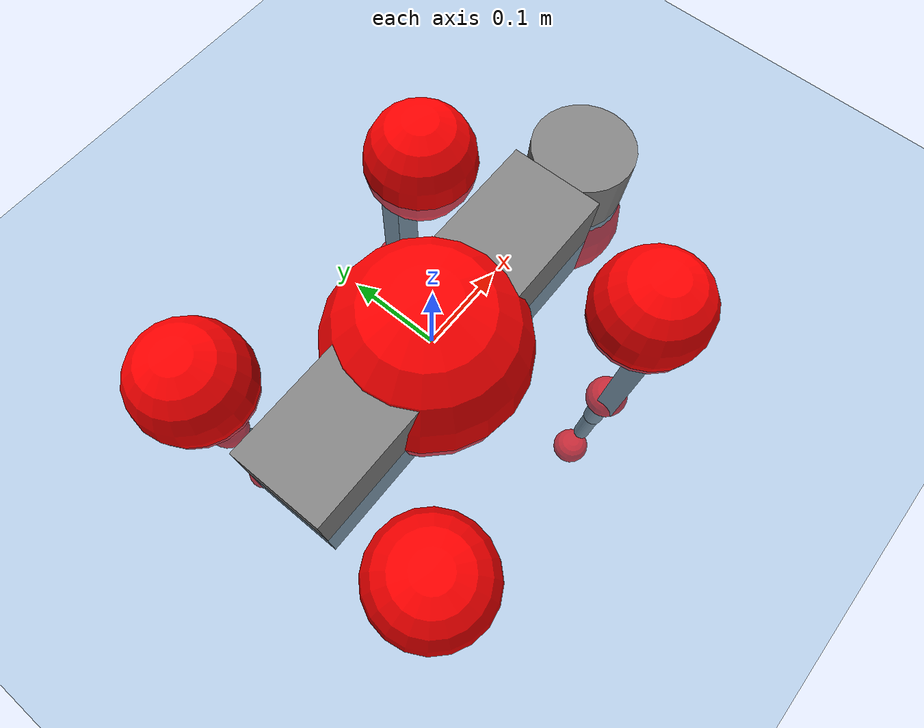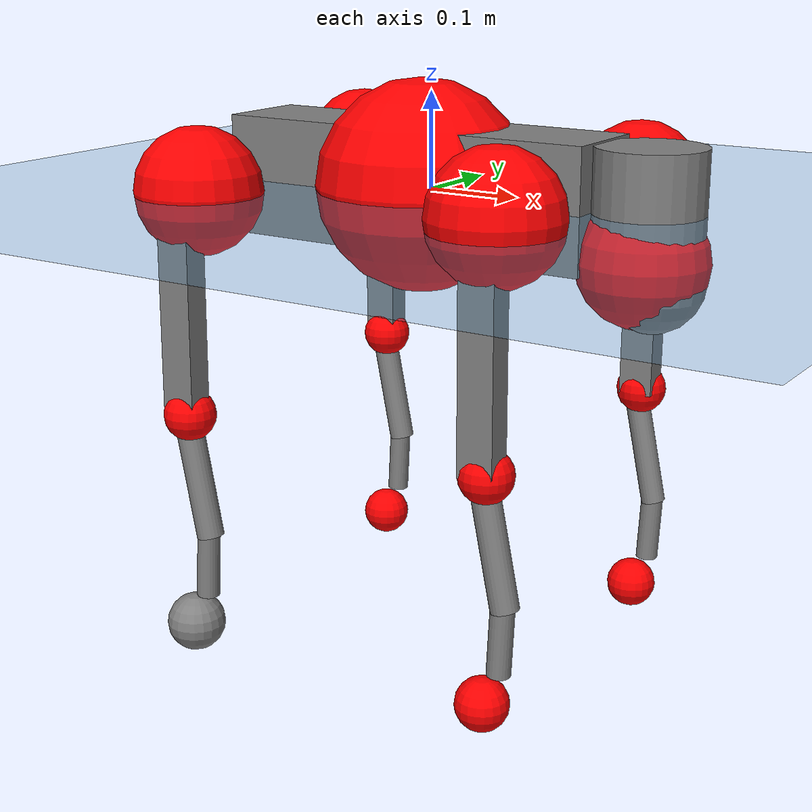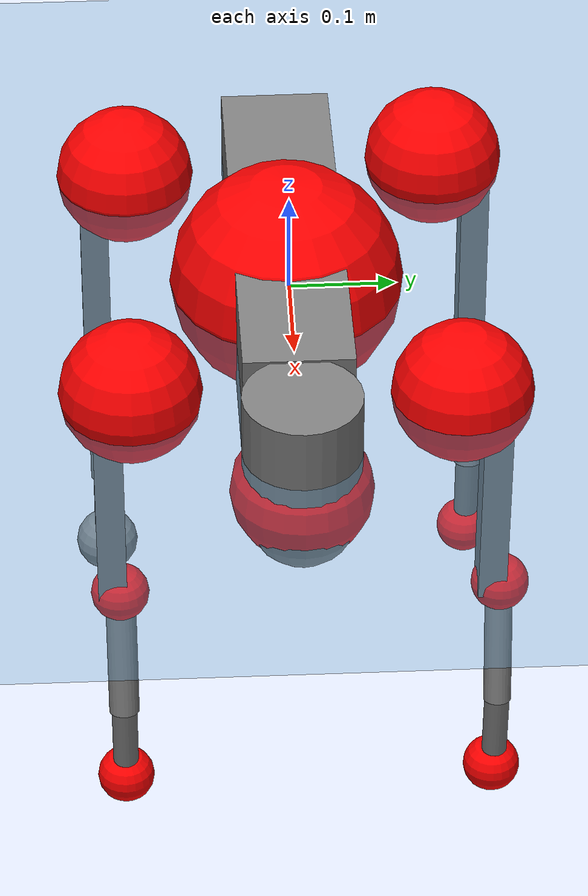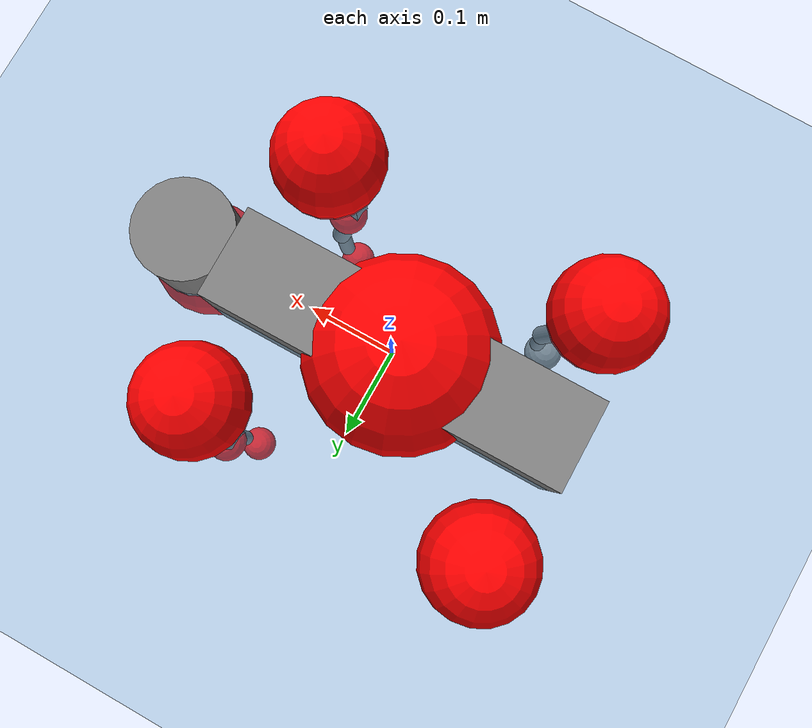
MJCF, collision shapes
<mujoco model="go2">
  <compiler angle="radian" assetdir="assets" balanceinertia="true" inertiafromgeom="false"/>

  <option timestep="0.005" density="1.2" viscosity="2e-05"/>

  <size nkey="1"/>

  <visual>
    <quality shadowsize="8192"/>
    <map shadowclip="0.5"/>
  </visual>

  <default>
    <default class="/">
      <geom contype="0" conaffinity="0" group="1" solref="-1000 -80"/>
      <site size="0.01 0.005 0.005" group="5"/>
      <general forcelimited="true" biastype="affine" gainprm="20" biasprm="0 -20 -0.5"/>
      <default class="go2">
        <joint armature="0.01" damping="0.01" frictionloss="0.2"/>
        <geom condim="1" margin="0.001"/>
        <default class="visual">
          <geom type="mesh" group="2"/>
        </default>
        <default class="collision">
          <geom group="3"/>
          <default class="foot">
            <geom size="0.022 0 0" condim="6" priority="1" friction="0.8 0.02 0.01" solimp="0.015 1 0.022"/>
          </default>
        </default>
        <default class="reward_collision_sphere">
          <geom group="5" rgba="1 0 0 1"/>
        </default>
      </default>
    </default>
  </default>

  <asset>
    <texture type="skybox" colorspace="auto" name="//unnamed_texture_0" builtin="gradient" rgb1="0.95 0.95 0.95" rgb2="0.95 0.95 0.95" width="100" height="600"/>
    <texture type="2d" colorspace="auto" name="texplane" builtin="checker" rgb1="0.345 0.575 0.748" rgb2="0.345 0.575 0.748" markrgb="1 1 1" width="512" height="512"/>
    <material name="MatPlane" class="/" texture="texplane" texuniform="true" texrepeat="2 2" specular="0.9"/>
    <material name="metal" class="/" rgba="0.9 0.95 0.95 1"/>
    <material name="black" class="/" rgba="0 0 0 1"/>
    <material name="white" class="/"/>
    <material name="gray" class="/" rgba="0.671705 0.692426 0.77427 1"/>
    <mesh name="base_0" class="/" file="base_0.obj"/>
    <mesh name="base_1" class="/" file="base_1.obj"/>
    <mesh name="base_2" class="/" file="base_2.obj"/>
    <mesh name="base_3" class="/" file="base_3.obj"/>
    <mesh name="base_4" class="/" file="base_4.obj"/>
    <mesh name="hip_0" class="/" file="hip_0.obj"/>
    <mesh name="hip_1" class="/" file="hip_1.obj"/>
    <mesh name="thigh_0" class="/" file="thigh_0.obj"/>
    <mesh name="thigh_1" class="/" file="thigh_1.obj"/>
    <mesh name="thigh_mirror_0" class="/" file="thigh_mirror_0.obj"/>
    <mesh name="thigh_mirror_1" class="/" file="thigh_mirror_1.obj"/>
    <mesh name="calf_0" class="/" file="calf_0.obj"/>
    <mesh name="calf_1" class="/" file="calf_1.obj"/>
    <mesh name="calf_mirror_0" class="/" file="calf_mirror_0.obj"/>
    <mesh name="calf_mirror_1" class="/" file="calf_mirror_1.obj"/>
    <mesh name="foot" class="/" file="foot.obj"/>
  </asset>

  <worldbody>
    <geom name="floor" class="/" size="100 100 0.125" type="plane" group="0" material="MatPlane"/>
    <light name="toplight_shadow" class="/" pos="0 0 5" dir="0.0990148 0.0990148 -0.990148" type="directional" ambient="0.04 0.04 0.04" diffuse="0.55 0.55 0.55" specular="0.12 0.12 0.12"/>
    <light name="toplight_fill" class="/" pos="0 0 5" dir="0.0990148 0.0990148 -0.990148" type="directional" castshadow="false" ambient="0.04 0.04 0.04" diffuse="0.3 0.3 0.3" specular="0.08 0.08 0.08"/>
    <body name="trunk" childclass="go2" pos="-0.010614 -0.00185233 0.00312616" quat="0.999989 -0.000303558 0.001959 0.00413905">
      <inertial pos="0.0288073 -0.00274294 -0.006733" quat="0.0006777 0.715625 -0.00248729 0.69848" mass="10.2425" diaginertia="0.0596226 0.351403 0.040236"/>
      <joint name="//unnamed_joint_0" type="free" armature="0" damping="0" frictionloss="0"/>
      <geom name="//unnamed_geom_1" class="visual" material="black" mesh="base_0"/>
      <geom name="//unnamed_geom_2" class="visual" material="black" mesh="base_1"/>
      <geom name="//unnamed_geom_3" class="visual" material="black" mesh="base_2"/>
      <geom name="//unnamed_geom_4" class="visual" material="white" mesh="base_3"/>
      <geom name="//unnamed_geom_5" class="visual" material="gray" mesh="base_4"/>
      <geom name="trunk_1" class="collision" size="0.207421 0.0515519 0.0628547" type="box"/>
      <geom name="trunk_2" class="collision" size="0.0551357 0.0496222" pos="0.255137 0 0.0111603" type="cylinder"/>
      <geom name="trunk_3" class="collision" size="0.0518276" pos="0.262299 0 -0.0669615"/>
      <geom name="//unnamed_geom_9" class="reward_collision_sphere" size="0.110271"/>
      <geom name="//unnamed_geom_10" class="reward_collision_sphere" size="0.0661629" pos="0.250661 0 -0.0502211"/>
      <site name="imu" pos="-0.031781 -0.0200059 0.00353062" size="0.0110271"/>
      <camera name="track" pos="0 -2.5938 0" quat="0.707107 0.707107 0 0" mode="trackcom"/>
      <camera name="ego_camera" pos="0.279308 0 0.0502211" quat="-0.5 -0.5 0.5 0.5"/>
      <body name="FL_hip" pos="0.175803 0.0610476 -0.0025835" quat="0.999999 -0.000998036 -0.00102026 0.00031492">
        <inertial pos="-0.00444998 0.00875958 -0.00172978" quat="0.495401 0.499726 0.500401 0.504431" mass="0.946681" diaginertia="0.000441253 0.00209102 0.000828399"/>
        <joint name="FL_hip_joint" pos="0 0 0" axis="0.998639 -0.0423558 -0.030448" stiffness="0.00827456" range="-1.25003 1.01408" armature="0.0115343" damping="0" frictionloss="0.222546"/>
        <geom name="//unnamed_geom_11" class="visual" material="metal" mesh="hip_0"/>
        <geom name="//unnamed_geom_12" class="visual" material="gray" mesh="hip_1"/>
        <geom name="//unnamed_geom_13" class="collision" size="0.0507249 0.0220543" pos="0 0.103752 0" quat="0.707107 0.707107 0 0" type="cylinder"/>
        <geom name="//unnamed_geom_14" class="reward_collision_sphere" size="0.0661629" pos="0 0.0907831 0"/>
        <body name="FL_thigh" pos="-0.00334436 0.124902 -0.00430955" quat="0.999992 -0.00263282 0.000843406 0.00279918">
          <inertial pos="-0.00936939 -0.023823 -0.027488" quat="0.829499 0.0848773 -0.0199652 0.55166" mass="1.62485" diaginertia="0.0035315 0.0236248 0.00141357"/>
          <joint name="FL_thigh_joint" pos="0 0 0" axis="0.00822792 0.999966 -0.000516107" stiffness="0.0547674" range="-1.62731 3.51391" armature="0.0124636" damping="0.00800164" frictionloss="0.237515"/>
          <geom name="//unnamed_geom_15" class="visual" material="metal" mesh="thigh_0"/>
          <geom name="//unnamed_geom_16" class="visual" material="gray" mesh="thigh_1"/>
          <geom name="//unnamed_geom_17" class="collision" size="0.117439 0.0135083 0.0187461" pos="0 0 -0.118857" quat="0.707107 0 0.707107 0" type="box"/>
          <body name="FL_calf" pos="-0.00196223 0.00909738 -0.234672" quat="0.999997 0.000749172 -0.0021803 0.000863459">
            <inertial pos="0.0130409 -0.00170285 -0.163303" quat="0.715407 0.00437075 0.00296322 0.698688" mass="0.316746" diaginertia="0.000781183 0.00433626 7.84837e-05"/>
            <joint name="FL_calf_joint" pos="0 0 0" axis="0.00459251 0.999976 -0.00526359" range="-2.54301 -0.797865" armature="0.00921946" damping="0.0451724" frictionloss="0.179291"/>
            <geom name="//unnamed_geom_18" class="visual" material="gray" mesh="calf_0"/>
            <geom name="//unnamed_geom_19" class="visual" material="black" mesh="calf_1"/>
            <geom name="FL_calf0" class="collision" size="0.0132326 0.0661629" pos="0.00716173 0 -0.0669615" quat="0.994493 0 -0.104807 0" type="cylinder"/>
            <geom name="//unnamed_geom_21" class="collision" size="0.0121299 0.0358382" pos="0.0179043 0 -0.165172" quat="0.999688 0 0.0249974 0" type="cylinder"/>
            <geom name="//unnamed_geom_22" class="visual" pos="0 0 -0.237713" quat="1 0 0 0" material="black" mesh="foot"/>
            <geom name="FL_foot" class="foot" size="0.017231" pos="-0.00179043 0 -0.237713"/>
            <geom name="//unnamed_geom_24" class="reward_collision_sphere" size="0.0275679"/>
            <geom name="//unnamed_geom_25" class="reward_collision_sphere" size="0.0275679" pos="-0.00179043 0 -0.237713"/>
            <site name="FL_foot" class="foot" pos="-0.00179043 0 -0.237713" size="0.0110271"/>
          </body>
        </body>
      </body>
      <body name="FR_hip" pos="0.175009 -0.0614715 0.00937079" quat="0.999994 0.00142651 -0.00305723 -0.000547647">
        <inertial pos="-0.00848895 0.00581966 -0.000917014" quat="0.515132 0.525164 0.484317 0.473581" mass="0.923159" diaginertia="0.000578272 0.00229242 0.000931317"/>
        <joint name="FR_hip_joint" pos="0 0 0" axis="0.999828 7.19937e-05 -0.0185494" stiffness="0.00288705" range="-1.07734 1.04242" armature="0.0106265" damping="0.0211921" frictionloss="0.306665"/>
        <geom name="//unnamed_geom_26" class="visual" pos="0 1.57572e-09 6.75858e-08" quat="4.63268e-05 1 0 0" material="metal" mesh="hip_0"/>
        <geom name="//unnamed_geom_27" class="visual" pos="0 2.55443e-09 -1.67165e-07" quat="4.63268e-05 1 0 0" material="gray" mesh="hip_1"/>
        <geom name="//unnamed_geom_28" class="collision" size="0.0507249 0.0220543" pos="0 -0.103752 0" quat="0.707107 0.707107 0 0" type="cylinder"/>
        <geom name="//unnamed_geom_29" class="reward_collision_sphere" size="0.0661629" pos="0 -0.0907831 0"/>
        <body name="FR_thigh" pos="0.000970726 -0.11351 -0.0033581" quat="0.999999 0.000341223 0.00124215 7.02174e-05">
          <inertial pos="-0.00745951 0.0355392 -0.0381066" quat="0.570519 -0.0223717 0.0960801 0.815338" mass="1.50933" diaginertia="0.00348474 0.0226563 0.00143376"/>
          <joint name="FR_thigh_joint" pos="0 0 0" axis="0.00737853 -0.999963 -0.00444639" stiffness="0.0213858" range="-3.51981 1.4258" armature="0.0114222" damping="0.0128899" frictionloss="0.190372"/>
          <geom name="//unnamed_geom_30" class="visual" material="metal" mesh="thigh_mirror_0"/>
          <geom name="//unnamed_geom_31" class="visual" material="gray" mesh="thigh_mirror_1"/>
          <geom name="//unnamed_geom_32" class="collision" size="0.117439 0.0135083 0.0187461" pos="0 0 -0.118857" quat="0.707107 0 0.707107 0" type="box"/>
          <body name="FR_calf" pos="0.00126703 0.00704065 -0.236372" quat="1 -7.99888e-05 0.000255768 -0.000149229">
            <inertial pos="0.00508488 0.00275011 -0.156091" quat="0.687514 -0.0119813 0.03773 0.725091" mass="0.313555" diaginertia="0.000854922 0.00530707 9.83105e-05"/>
            <joint name="FR_calf_joint" pos="0 0 0" axis="-0.0240101 -0.998852 -0.0414564" stiffness="0.0416136" range="0.877726 2.60419" armature="0.0117556" damping="0" frictionloss="0.245159"/>
            <geom name="//unnamed_geom_33" class="visual" material="gray" mesh="calf_mirror_0"/>
            <geom name="//unnamed_geom_34" class="visual" material="black" mesh="calf_mirror_1"/>
            <geom name="FR_calf0" class="collision" size="0.0143353 0.0661629" pos="0.00895217 0 -0.0669615" quat="0.995004 0 -0.0998334 0" type="cylinder"/>
            <geom name="//unnamed_geom_36" class="collision" size="0.0121299 0.0358382" pos="0.0179043 0 -0.165172" quat="0.999688 0 0.0249974 0" type="cylinder"/>
            <geom name="//unnamed_geom_37" class="visual" pos="0 0 -0.237713" quat="1 0 0 0" material="black" mesh="foot"/>
            <geom name="FR_foot" class="foot" size="0.0255413" pos="-0.00179043 0 -0.237713"/>
            <geom name="//unnamed_geom_39" class="reward_collision_sphere" size="0.0275679"/>
            <geom name="//unnamed_geom_40" class="reward_collision_sphere" size="0.0275679" pos="-0.00179043 0 -0.237713"/>
            <site name="FR_foot" class="foot" pos="-0.00179043 0 -0.237713" size="0.0110271"/>
          </body>
        </body>
      </body>
      <body name="RL_hip" pos="-0.176551 0.0616569 0.00703882" quat="0.999999 0.000836352 -0.000181278 -0.000843131">
        <inertial pos="0.00279074 -0.00715783 0.00634521" quat="0.532846 0.466331 0.472601 0.524651" mass="0.804575" diaginertia="0.000521079 0.00214538 0.000741684"/>
        <joint name="RL_hip_joint" pos="0 0 0" axis="-0.999775 -0.021068 0.0026285" range="-1.07308 1.13741" armature="0.01475" damping="0.00855274" frictionloss="0.126644"/>
        <geom name="//unnamed_geom_41" class="visual" pos="1.92359e-09 0 3.77069e-07" quat="4.63268e-05 0 1 0" material="metal" mesh="hip_0"/>
        <geom name="//unnamed_geom_42" class="visual" pos="3.11838e-09 0 3.34406e-07" quat="4.63268e-05 0 1 0" material="gray" mesh="hip_1"/>
        <geom name="//unnamed_geom_43" class="collision" size="0.0507249 0.0220543" pos="0 0.103752 0" quat="0.707107 0.707107 0 0" type="cylinder"/>
        <geom name="//unnamed_geom_44" class="reward_collision_sphere" size="0.0661629" pos="0 0.0907831 0"/>
        <body name="RL_thigh" pos="0.00107395 0.132041 -0.00837844" quat="1 -0.000542879 0.000139068 0.000370341">
          <inertial pos="-0.00358824 -0.029128 -0.0355529" quat="0.829295 0.0780513 -0.0155688 0.553115" mass="1.34695" diaginertia="0.00347889 0.0215213 0.00141121"/>
          <joint name="RL_thigh_joint" pos="0 0 0" axis="0.0235837 0.999716 0.00351868" range="-0.490081 4.55535" armature="0.00767892" damping="0.0269946" frictionloss="0.215077"/>
          <geom name="//unnamed_geom_45" class="visual" material="metal" mesh="thigh_0"/>
          <geom name="//unnamed_geom_46" class="visual" material="gray" mesh="thigh_1"/>
          <geom name="//unnamed_geom_47" class="collision" size="0.117439 0.0135083 0.0187461" pos="0 0 -0.118857" quat="0.707107 0 0.707107 0" type="box"/>
          <body name="RL_calf" pos="0.000847995 0.000541232 -0.228339" quat="1 -0.000170908 -3.64445e-05 -4.39888e-05">
            <inertial pos="0.00723506 -0.0109834 -0.156051" quat="0.712269 -0.00897642 0.0110748 0.701762" mass="0.317166" diaginertia="0.000884392 0.00540376 0.000102122"/>
            <joint name="RL_calf_joint" pos="0 0 0" axis="-0.0058446 0.999966 0.00584037" stiffness="0.0539497" range="-2.71268 -0.895074" armature="0.00892" damping="0.0340926" frictionloss="0.111465"/>
            <geom name="//unnamed_geom_48" class="visual" material="gray" mesh="calf_0"/>
            <geom name="//unnamed_geom_49" class="visual" material="black" mesh="calf_1"/>
            <geom name="RL_calf0" class="collision" size="0.0143353 0.0661629" pos="0.00895217 0 -0.0669615" quat="0.995004 0 -0.0998334 0" type="cylinder"/>
            <geom name="//unnamed_geom_51" class="collision" size="0.0121299 0.0358382" pos="0.0179043 0 -0.165172" quat="0.999688 0 0.0249974 0" type="cylinder"/>
            <geom name="//unnamed_geom_52" class="visual" pos="0 0 -0.237713" quat="1 0 0 0" material="black" mesh="foot"/>
            <geom name="RL_foot" class="foot" size="0.0275214" pos="-0.00179043 0 -0.237713"/>
            <geom name="//unnamed_geom_54" class="reward_collision_sphere" size="0.0275679"/>
            <geom name="//unnamed_geom_55" class="reward_collision_sphere" size="0.0275679" pos="-0.00179043 0 -0.237713"/>
            <site name="RL_foot" class="foot" pos="-0.00179043 0 -0.237713" size="0.0110271"/>
          </body>
        </body>
      </body>
      <body name="RR_hip" pos="-0.174597 -0.05664 -0.00161351" quat="0.999989 -0.00055578 0.00385432 0.00279285">
        <inertial pos="-0.00514601 -0.00890488 0.00974339" quat="0.506384 0.49056 0.516988 0.485438" mass="0.904976" diaginertia="0.000499417 0.00214194 0.000815265"/>
        <joint name="RR_hip_joint" pos="0 0 0" axis="-0.998657 0.00688063 -0.0513491" range="-1.07878 1.06484" armature="0.0129118" damping="0.00437362" frictionloss="0.227"/>
        <geom name="//unnamed_geom_56" class="visual" pos="-1.90969e-09 1.57572e-09 3.09483e-07" quat="2.14617e-09 4.63268e-05 4.63268e-05 -1" material="metal" mesh="hip_0"/>
        <geom name="//unnamed_geom_57" class="visual" pos="-3.15277e-09 2.55443e-09 5.01572e-07" quat="2.14617e-09 4.63268e-05 4.63268e-05 -1" material="gray" mesh="hip_1"/>
        <geom name="//unnamed_geom_58" class="collision" size="0.0507249 0.0220543" pos="0 -0.103752 0" quat="0.707107 0.707107 0 0" type="cylinder"/>
        <geom name="//unnamed_geom_59" class="reward_collision_sphere" size="0.0661629" pos="0 -0.0907831 0"/>
        <body name="RR_thigh" pos="0.00058952 -0.122354 0.00999002" quat="1 0.000427199 0.000612795 -0.000663613">
          <inertial pos="-0.00480337 0.0300109 -0.0367894" quat="0.556877 -0.0172538 0.0841636 0.82614" mass="1.68795" diaginertia="0.00336362 0.0199059 0.00152182"/>
          <joint name="RR_thigh_joint" pos="0 0 0" axis="0.0046311 -0.999988 0.00181497" range="-4.54764 0.364266" armature="0.0101324" damping="0.0080124" frictionloss="0.226589"/>
          <geom name="//unnamed_geom_60" class="visual" material="metal" mesh="thigh_mirror_0"/>
          <geom name="//unnamed_geom_61" class="visual" material="gray" mesh="thigh_mirror_1"/>
          <geom name="//unnamed_geom_62" class="collision" size="0.117439 0.0135083 0.0187461" pos="0 0 -0.118857" quat="0.707107 0 0.707107 0" type="box"/>
          <body name="RR_calf" pos="0.00168937 0.00326522 -0.24108" quat="1 0.000594394 -0.000535604 0.000445958">
            <inertial pos="0.01181 0.00225079 -0.159071" quat="0.703799 -0.023975 0.0052732 0.709975" mass="0.315578" diaginertia="0.000834688 0.00547849 8.33642e-05"/>
            <joint name="RR_calf_joint" pos="0 0 0" axis="0.0440871 -0.999016 0.00492739" range="0.873966 2.70679" armature="0.0114048" damping="0" frictionloss="0.225535"/>
            <geom name="//unnamed_geom_63" class="visual" material="gray" mesh="calf_mirror_0"/>
            <geom name="//unnamed_geom_64" class="visual" material="black" mesh="calf_mirror_1"/>
            <geom name="RR_calf0" class="collision" size="0.0143353 0.0661629" pos="0.00895217 0 -0.0669615" quat="0.995004 0 -0.0998334 0" type="cylinder"/>
            <geom name="//unnamed_geom_66" class="collision" size="0.0121299 0.0358382" pos="0.0179043 0 -0.165172" quat="0.999688 0 0.0249974 0" type="cylinder"/>
            <geom name="//unnamed_geom_67" class="visual" pos="0 0 -0.237713" quat="1 0 0 0" material="black" mesh="foot"/>
            <geom name="RR_foot" class="foot" size="0.0312646" pos="-0.00179043 0 -0.237713"/>
            <geom name="//unnamed_geom_69" class="reward_collision_sphere" size="0.0275679"/>
            <geom name="//unnamed_geom_70" class="reward_collision_sphere" size="0.0275679" pos="-0.00179043 0 -0.237713"/>
            <site name="RR_foot" class="foot" pos="-0.00179043 0 -0.237713" size="0.0110271"/>
          </body>
        </body>
      </body>
    </body>
  </worldbody>

  <contact>
    <pair class="/" geom1="floor" geom2="FL_foot" name="//unnamed_contact_0"/>
    <pair class="/" geom1="floor" geom2="FR_foot" name="//unnamed_contact_1"/>
    <pair class="/" geom1="floor" geom2="RL_foot" name="//unnamed_contact_2"/>
    <pair class="/" geom1="floor" geom2="RR_foot" name="//unnamed_contact_3"/>
  </contact>

  <actuator>
    <general name="FL_hip" class="/" joint="FL_hip_joint" forcerange="-26.701 26.701" gainprm="19.6721" biasprm="0 -19.6721 -0.631032"/>
    <general name="FL_thigh" class="/" joint="FL_thigh_joint" forcerange="-29.89 29.89" gainprm="19.6721" biasprm="0 -19.6721 -0.631032"/>
    <general name="FL_calf" class="/" joint="FL_calf_joint" forcerange="-47.3636 47.3636" gainprm="19.6721" biasprm="0 -19.6721 -0.631032"/>
    <general name="FR_hip" class="/" joint="FR_hip_joint" forcerange="-24.4235 24.4235" gainprm="19.6721" biasprm="0 -19.6721 -0.631032"/>
    <general name="FR_thigh" class="/" joint="FR_thigh_joint" forcerange="-22.4765 22.4765" gainprm="19.6721" biasprm="0 -19.6721 -0.631032"/>
    <general name="FR_calf" class="/" joint="FR_calf_joint" forcerange="-46.0042 46.0042" gainprm="19.6721" biasprm="0 -19.6721 -0.631032"/>
    <general name="RL_hip" class="/" joint="RL_hip_joint" forcerange="-16.7105 16.7105" gainprm="19.6721" biasprm="0 -19.6721 -0.631032"/>
    <general name="RL_thigh" class="/" joint="RL_thigh_joint" forcerange="-29.548 29.548" gainprm="19.6721" biasprm="0 -19.6721 -0.631032"/>
    <general name="RL_calf" class="/" joint="RL_calf_joint" forcerange="-68.1285 68.1285" gainprm="19.6721" biasprm="0 -19.6721 -0.631032"/>
    <general name="RR_hip" class="/" joint="RR_hip_joint" forcerange="-31.4902 31.4902" gainprm="19.6721" biasprm="0 -19.6721 -0.631032"/>
    <general name="RR_thigh" class="/" joint="RR_thigh_joint" forcerange="-17.14 17.14" gainprm="19.6721" biasprm="0 -19.6721 -0.631032"/>
    <general name="RR_calf" class="/" joint="RR_calf_joint" forcerange="-53.1191 53.1191" gainprm="19.6721" biasprm="0 -19.6721 -0.631032"/>
  </actuator>

  <sensor>
    <gyro site="imu" name="imu_angular_velocity"/>
    <velocimeter site="imu" name="imu_linear_velocity"/>
    <framelinvel objtype="site" objname="FL_foot" name="FL_foot_global_linear_velocity"/>
    <framelinvel objtype="site" objname="FR_foot" name="FR_foot_global_linear_velocity"/>
    <framelinvel objtype="site" objname="RL_foot" name="RL_foot_global_linear_velocity"/>
    <framelinvel objtype="site" objname="RR_foot" name="RR_foot_global_linear_velocity"/>
  </sensor>

  <keyframe>
    <key name="home" qpos="0 0 0.325 1 0 0 0 0.1 0.8 -1.5 -0.1 -0.8 1.5 -0.1 0.8 -1.5 0.1 -0.8 1.5"/>
  </keyframe>
</mujoco>
